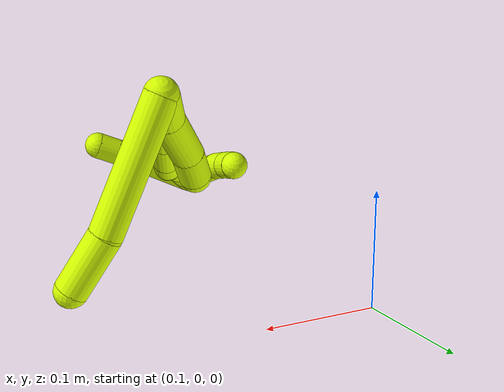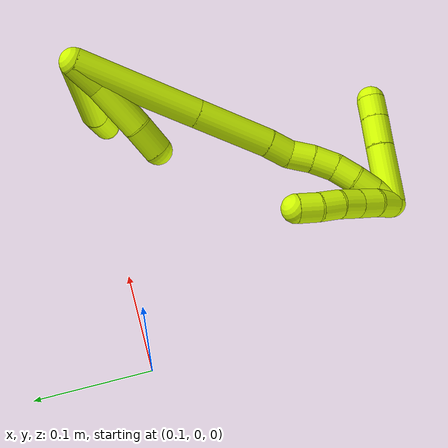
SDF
<sdf version="1.7">
 <world name="default">
  <model name="15">
   <static>0</static>
   <link name="15">
    <collision name="collision-cylinder-e_1_2_8">
     <pose>0.030953 -0.019974 -0.035981 2.63483 0.644871 1.82289</pose>
     <geometry><cylinder><radius>0.0125</radius><length>0.102989</length></cylinder></geometry>
     <surface>
      <friction><ode><mu>1.16</mu><mu2>1.16</mu2><slip1>0</slip1><slip2>0</slip2></ode></friction>
      <contact><ode><kp>1e+06</kp><kd>1</kd><max_vel>0</max_vel><min_depth>0.001</min_depth></ode></contact>
     </surface>
    </collision>
    <visual name="visual-cylinder-e_1_2_8">
     <pose>0.030953 -0.019974 -0.035981 2.63483 0.644871 1.82289</pose>
     <geometry><cylinder><radius>0.0125</radius><length>0.102989</length></cylinder></geometry>
     <material><ambient>0.835294 1 0 1</ambient></material>
    </visual>
    <collision name="collision-cylinder-e_2_8_6">
     <pose>0.073221 -0.052347 -0.088417 2.49582 0.502186 1.3081</pose>
     <geometry><cylinder><radius>0.0125</radius><length>0.047011</length></cylinder></geometry>
     <surface>
      <friction><ode><mu>1.16</mu><mu2>1.16</mu2><slip1>0</slip1><slip2>0</slip2></ode></friction>
      <contact><ode><kp>1e+06</kp><kd>1</kd><max_vel>0</max_vel><min_depth>0.001</min_depth></ode></contact>
     </surface>
    </collision>
    <visual name="visual-cylinder-e_2_8_6">
     <pose>0.073221 -0.052347 -0.088417 2.49582 0.502186 1.3081</pose>
     <geometry><cylinder><radius>0.0125</radius><length>0.047011</length></cylinder></geometry>
     <material><ambient>0.835294 1 0 1</ambient></material>
    </visual>
    <collision name="collision-cylinder-e_1_2_9">
     <pose>-0.000881 0.002787 -0.013478 -2.93768 -0.063955 0.606048</pose>
     <geometry><cylinder><radius>0.0125</radius><length>0.027583</length></cylinder></geometry>
     <surface>
      <friction><ode><mu>1.16</mu><mu2>1.16</mu2><slip1>0</slip1><slip2>0</slip2></ode></friction>
      <contact><ode><kp>1e+06</kp><kd>1</kd><max_vel>0</max_vel><min_depth>0.001</min_depth></ode></contact>
     </surface>
    </collision>
    <visual name="visual-cylinder-e_1_2_9">
     <pose>-0.000881 0.002787 -0.013478 -2.93768 -0.063955 0.606048</pose>
     <geometry><cylinder><radius>0.0125</radius><length>0.027583</length></cylinder></geometry>
     <material><ambient>0.835294 1 0 1</ambient></material>
    </visual>
    <collision name="collision-cylinder-e_2_9_10">
     <pose>-0.003172 0.014206 -0.048073 -2.75358 -0.0617 0.311584</pose>
     <geometry><cylinder><radius>0.0125</radius><length>0.045713</length></cylinder></geometry>
     <surface>
      <friction><ode><mu>1.16</mu><mu2>1.16</mu2><slip1>0</slip1><slip2>0</slip2></ode></friction>
      <contact><ode><kp>1e+06</kp><kd>1</kd><max_vel>0</max_vel><min_depth>0.001</min_depth></ode></contact>
     </surface>
    </collision>
    <visual name="visual-cylinder-e_2_9_10">
     <pose>-0.003172 0.014206 -0.048073 -2.75358 -0.0617 0.311584</pose>
     <geometry><cylinder><radius>0.0125</radius><length>0.045713</length></cylinder></geometry>
     <material><ambient>0.835294 1 0 1</ambient></material>
    </visual>
    <collision name="collision-cylinder-e_3_10_5">
     <pose>-0.00401 0.026569 -0.081998 -2.85804 0.042823 -0.297847</pose>
     <geometry><cylinder><radius>0.0125</radius><length>0.026704</length></cylinder></geometry>
     <surface>
      <friction><ode><mu>1.16</mu><mu2>1.16</mu2><slip1>0</slip1><slip2>0</slip2></ode></friction>
      <contact><ode><kp>1e+06</kp><kd>1</kd><max_vel>0</max_vel><min_depth>0.001</min_depth></ode></contact>
     </surface>
    </collision>
    <visual name="visual-cylinder-e_3_10_5">
     <pose>-0.00401 0.026569 -0.081998 -2.85804 0.042823 -0.297847</pose>
     <geometry><cylinder><radius>0.0125</radius><length>0.026704</length></cylinder></geometry>
     <material><ambient>0.835294 1 0 1</ambient></material>
    </visual>
    <collision name="collision-cylinder-e_1_2_11">
     <pose>-0.022058 0.00507 -0.04918 -3.03887 -0.419644 2.66786</pose>
     <geometry><cylinder><radius>0.0125</radius><length>0.108275</length></cylinder></geometry>
     <surface>
      <friction><ode><mu>1.16</mu><mu2>1.16</mu2><slip1>0</slip1><slip2>0</slip2></ode></friction>
      <contact><ode><kp>1e+06</kp><kd>1</kd><max_vel>0</max_vel><min_depth>0.001</min_depth></ode></contact>
     </surface>
    </collision>
    <visual name="visual-cylinder-e_1_2_11">
     <pose>-0.022058 0.00507 -0.04918 -3.03887 -0.419644 2.66786</pose>
     <geometry><cylinder><radius>0.0125</radius><length>0.108275</length></cylinder></geometry>
     <material><ambient>0.835294 1 0 1</ambient></material>
    </visual>
    <collision name="collision-cylinder-e_2_11_12">
     <pose>-0.058064 0.013567 -0.128877 -3.02974 -0.42637 2.63543</pose>
     <geometry><cylinder><radius>0.0125</radius><length>0.067458</length></cylinder></geometry>
     <surface>
      <friction><ode><mu>1.16</mu><mu2>1.16</mu2><slip1>0</slip1><slip2>0</slip2></ode></friction>
      <contact><ode><kp>1e+06</kp><kd>1</kd><max_vel>0</max_vel><min_depth>0.001</min_depth></ode></contact>
     </surface>
    </collision>
    <visual name="visual-cylinder-e_2_11_12">
     <pose>-0.058064 0.013567 -0.128877 -3.02974 -0.42637 2.63543</pose>
     <geometry><cylinder><radius>0.0125</radius><length>0.067458</length></cylinder></geometry>
     <material><ambient>0.835294 1 0 1</ambient></material>
    </visual>
    <collision name="collision-cylinder-e_3_12_13">
     <pose>-0.075866 0.018748 -0.169551 -2.97075 -0.357652 2.25676</pose>
     <geometry><cylinder><radius>0.0125</radius><length>0.022006</length></cylinder></geometry>
     <surface>
      <friction><ode><mu>1.16</mu><mu2>1.16</mu2><slip1>0</slip1><slip2>0</slip2></ode></friction>
      <contact><ode><kp>1e+06</kp><kd>1</kd><max_vel>0</max_vel><min_depth>0.001</min_depth></ode></contact>
     </surface>
    </collision>
    <visual name="visual-cylinder-e_3_12_13">
     <pose>-0.075866 0.018748 -0.169551 -2.97075 -0.357652 2.25676</pose>
     <geometry><cylinder><radius>0.0125</radius><length>0.022006</length></cylinder></geometry>
     <material><ambient>0.835294 1 0 1</ambient></material>
    </visual>
    <collision name="collision-cylinder-e_4_13_14">
     <pose>-0.086458 0.021841 -0.187655 -2.97442 -0.69653 2.688</pose>
     <geometry><cylinder><radius>0.0125</radius><length>0.021014</length></cylinder></geometry>
     <surface>
      <friction><ode><mu>1.16</mu><mu2>1.16</mu2><slip1>0</slip1><slip2>0</slip2></ode></friction>
      <contact><ode><kp>1e+06</kp><kd>1</kd><max_vel>0</max_vel><min_depth>0.001</min_depth></ode></contact>
     </surface>
    </collision>
    <visual name="visual-cylinder-e_4_13_14">
     <pose>-0.086458 0.021841 -0.187655 -2.97442 -0.69653 2.688</pose>
     <geometry><cylinder><radius>0.0125</radius><length>0.021014</length></cylinder></geometry>
     <material><ambient>0.835294 1 0 1</ambient></material>
    </visual>
    <collision name="collision-cylinder-e_5_14_15">
     <pose>-0.099091 0.025664 -0.203989 -2.85385 -0.592845 2.25577</pose>
     <geometry><cylinder><radius>0.0125</radius><length>0.021092</length></cylinder></geometry>
     <surface>
      <friction><ode><mu>1.16</mu><mu2>1.16</mu2><slip1>0</slip1><slip2>0</slip2></ode></friction>
      <contact><ode><kp>1e+06</kp><kd>1</kd><max_vel>0</max_vel><min_depth>0.001</min_depth></ode></contact>
     </surface>
    </collision>
    <visual name="visual-cylinder-e_5_14_15">
     <pose>-0.099091 0.025664 -0.203989 -2.85385 -0.592845 2.25577</pose>
     <geometry><cylinder><radius>0.0125</radius><length>0.021092</length></cylinder></geometry>
     <material><ambient>0.835294 1 0 1</ambient></material>
    </visual>
    <collision name="collision-cylinder-e_6_15_16">
     <pose>-0.109495 0.032232 -0.22034 -2.66761 -0.466818 1.55499</pose>
     <geometry><cylinder><radius>0.0125</radius><length>0.020047</length></cylinder></geometry>
     <surface>
      <friction><ode><mu>1.16</mu><mu2>1.16</mu2><slip1>0</slip1><slip2>0</slip2></ode></friction>
      <contact><ode><kp>1e+06</kp><kd>1</kd><max_vel>0</max_vel><min_depth>0.001</min_depth></ode></contact>
     </surface>
    </collision>
    <visual name="visual-cylinder-e_6_15_16">
     <pose>-0.109495 0.032232 -0.22034 -2.66761 -0.466818 1.55499</pose>
     <geometry><cylinder><radius>0.0125</radius><length>0.020047</length></cylinder></geometry>
     <material><ambient>0.835294 1 0 1</ambient></material>
    </visual>
    <collision name="collision-cylinder-e_7_16_17">
     <pose>-0.117496 0.039815 -0.237054 -2.76135 -0.354761 1.49991</pose>
     <geometry><cylinder><radius>0.0125</radius><length>0.020098</length></cylinder></geometry>
     <surface>
      <friction><ode><mu>1.16</mu><mu2>1.16</mu2><slip1>0</slip1><slip2>0</slip2></ode></friction>
      <contact><ode><kp>1e+06</kp><kd>1</kd><max_vel>0</max_vel><min_depth>0.001</min_depth></ode></contact>
     </surface>
    </collision>
    <visual name="visual-cylinder-e_7_16_17">
     <pose>-0.117496 0.039815 -0.237054 -2.76135 -0.354761 1.49991</pose>
     <geometry><cylinder><radius>0.0125</radius><length>0.020098</length></cylinder></geometry>
     <material><ambient>0.835294 1 0 1</ambient></material>
    </visual>
    <collision name="collision-cylinder-e_8_17_1">
     <pose>-0.124652 0.046775 -0.254446 -2.76048 -0.374994 1.55423</pose>
     <geometry><cylinder><radius>0.0125</radius><length>0.02001</length></cylinder></geometry>
     <surface>
      <friction><ode><mu>1.16</mu><mu2>1.16</mu2><slip1>0</slip1><slip2>0</slip2></ode></friction>
      <contact><ode><kp>1e+06</kp><kd>1</kd><max_vel>0</max_vel><min_depth>0.001</min_depth></ode></contact>
     </surface>
    </collision>
    <visual name="visual-cylinder-e_8_17_1">
     <pose>-0.124652 0.046775 -0.254446 -2.76048 -0.374994 1.55423</pose>
     <geometry><cylinder><radius>0.0125</radius><length>0.02001</length></cylinder></geometry>
     <material><ambient>0.835294 1 0 1</ambient></material>
    </visual>
    <collision name="collision-cylinder-e_1_1_18">
     <pose>-0.132841 0.026596 -0.252446 1.14783 -0.17279 -0.111872</pose>
     <geometry><cylinder><radius>0.0125</radius><length>0.052637</length></cylinder></geometry>
     <surface>
      <friction><ode><mu>1.16</mu><mu2>1.16</mu2><slip1>0</slip1><slip2>0</slip2></ode></friction>
      <contact><ode><kp>1e+06</kp><kd>1</kd><max_vel>0</max_vel><min_depth>0.001</min_depth></ode></contact>
     </surface>
    </collision>
    <visual name="visual-cylinder-e_1_1_18">
     <pose>-0.132841 0.026596 -0.252446 1.14783 -0.17279 -0.111872</pose>
     <geometry><cylinder><radius>0.0125</radius><length>0.052637</length></cylinder></geometry>
     <material><ambient>0.835294 1 0 1</ambient></material>
    </visual>
    <collision name="collision-cylinder-e_2_18_19">
     <pose>-0.139528 -0.009555 -0.236922 1.19867 -0.159619 -0.10917</pose>
     <geometry><cylinder><radius>0.0125</radius><length>0.027202</length></cylinder></geometry>
     <surface>
      <friction><ode><mu>1.16</mu><mu2>1.16</mu2><slip1>0</slip1><slip2>0</slip2></ode></friction>
      <contact><ode><kp>1e+06</kp><kd>1</kd><max_vel>0</max_vel><min_depth>0.001</min_depth></ode></contact>
     </surface>
    </collision>
    <visual name="visual-cylinder-e_2_18_19">
     <pose>-0.139528 -0.009555 -0.236922 1.19867 -0.159619 -0.10917</pose>
     <geometry><cylinder><radius>0.0125</radius><length>0.027202</length></cylinder></geometry>
     <material><ambient>0.835294 1 0 1</ambient></material>
    </visual>
    <collision name="collision-cylinder-e_3_19_4">
     <pose>-0.143153 -0.031369 -0.22845 1.20266 -0.145695 -0.100053</pose>
     <geometry><cylinder><radius>0.0125</radius><length>0.020162</length></cylinder></geometry>
     <surface>
      <friction><ode><mu>1.16</mu><mu2>1.16</mu2><slip1>0</slip1><slip2>0</slip2></ode></friction>
      <contact><ode><kp>1e+06</kp><kd>1</kd><max_vel>0</max_vel><min_depth>0.001</min_depth></ode></contact>
     </surface>
    </collision>
    <visual name="visual-cylinder-e_3_19_4">
     <pose>-0.143153 -0.031369 -0.22845 1.20266 -0.145695 -0.100053</pose>
     <geometry><cylinder><radius>0.0125</radius><length>0.020162</length></cylinder></geometry>
     <material><ambient>0.835294 1 0 1</ambient></material>
    </visual>
    <collision name="collision-cylinder-e_1_1_20">
     <pose>-0.125232 0.053733 -0.254241 -0.37629 0.313503 -0.060166</pose>
     <geometry><cylinder><radius>0.0125</radius><length>0.02</length></cylinder></geometry>
     <surface>
      <friction><ode><mu>1.16</mu><mu2>1.16</mu2><slip1>0</slip1><slip2>0</slip2></ode></friction>
      <contact><ode><kp>1e+06</kp><kd>1</kd><max_vel>0</max_vel><min_depth>0.001</min_depth></ode></contact>
     </surface>
    </collision>
    <visual name="visual-cylinder-e_1_1_20">
     <pose>-0.125232 0.053733 -0.254241 -0.37629 0.313503 -0.060166</pose>
     <geometry><cylinder><radius>0.0125</radius><length>0.02</length></cylinder></geometry>
     <material><ambient>0.835294 1 0 1</ambient></material>
    </visual>
    <collision name="collision-cylinder-e_2_20_21">
     <pose>-0.117346 0.060368 -0.237204 -0.366038 0.500907 -0.094631</pose>
     <geometry><cylinder><radius>0.0125</radius><length>0.02</length></cylinder></geometry>
     <surface>
      <friction><ode><mu>1.16</mu><mu2>1.16</mu2><slip1>0</slip1><slip2>0</slip2></ode></friction>
      <contact><ode><kp>1e+06</kp><kd>1</kd><max_vel>0</max_vel><min_depth>0.001</min_depth></ode></contact>
     </surface>
    </collision>
    <visual name="visual-cylinder-e_2_20_21">
     <pose>-0.117346 0.060368 -0.237204 -0.366038 0.500907 -0.094631</pose>
     <geometry><cylinder><radius>0.0125</radius><length>0.02</length></cylinder></geometry>
     <material><ambient>0.835294 1 0 1</ambient></material>
    </visual>
    <collision name="collision-cylinder-e_3_21_22">
     <pose>-0.108344 0.066898 -0.220595 -0.382843 0.4334 -0.085279</pose>
     <geometry><cylinder><radius>0.0125</radius><length>0.02</length></cylinder></geometry>
     <surface>
      <friction><ode><mu>1.16</mu><mu2>1.16</mu2><slip1>0</slip1><slip2>0</slip2></ode></friction>
      <contact><ode><kp>1e+06</kp><kd>1</kd><max_vel>0</max_vel><min_depth>0.001</min_depth></ode></contact>
     </surface>
    </collision>
    <visual name="visual-cylinder-e_3_21_22">
     <pose>-0.108344 0.066898 -0.220595 -0.382843 0.4334 -0.085279</pose>
     <geometry><cylinder><radius>0.0125</radius><length>0.02</length></cylinder></geometry>
     <material><ambient>0.835294 1 0 1</ambient></material>
    </visual>
    <collision name="collision-cylinder-e_4_22_23">
     <pose>-0.098633 0.073709 -0.204566 -0.422424 0.583757 -0.128665</pose>
     <geometry><cylinder><radius>0.0125</radius><length>0.02</length></cylinder></geometry>
     <surface>
      <friction><ode><mu>1.16</mu><mu2>1.16</mu2><slip1>0</slip1><slip2>0</slip2></ode></friction>
      <contact><ode><kp>1e+06</kp><kd>1</kd><max_vel>0</max_vel><min_depth>0.001</min_depth></ode></contact>
     </surface>
    </collision>
    <visual name="visual-cylinder-e_4_22_23">
     <pose>-0.098633 0.073709 -0.204566 -0.422424 0.583757 -0.128665</pose>
     <geometry><cylinder><radius>0.0125</radius><length>0.02</length></cylinder></geometry>
     <material><ambient>0.835294 1 0 1</ambient></material>
    </visual>
    <collision name="collision-cylinder-e_5_23_3">
     <pose>-0.086891 0.079265 -0.18943 -0.276508 0.672585 -0.097203</pose>
     <geometry><cylinder><radius>0.0125</radius><length>0.02</length></cylinder></geometry>
     <surface>
      <friction><ode><mu>1.16</mu><mu2>1.16</mu2><slip1>0</slip1><slip2>0</slip2></ode></friction>
      <contact><ode><kp>1e+06</kp><kd>1</kd><max_vel>0</max_vel><min_depth>0.001</min_depth></ode></contact>
     </surface>
    </collision>
    <visual name="visual-cylinder-e_5_23_3">
     <pose>-0.086891 0.079265 -0.18943 -0.276508 0.672585 -0.097203</pose>
     <geometry><cylinder><radius>0.0125</radius><length>0.02</length></cylinder></geometry>
     <material><ambient>0.835294 1 0 1</ambient></material>
    </visual>
    <collision name="collision-sphere-3">
     <pose>-0.080661 0.081401 -0.181905 0 -0 0</pose>
     <geometry><sphere><radius>0.0125</radius></sphere></geometry>
     <surface>
      <friction><ode><mu>1.16</mu><mu2>1.16</mu2><slip1>0</slip1><slip2>0</slip2></ode></friction>
      <contact><ode><kp>1e+06</kp><kd>1</kd><max_vel>0</max_vel><min_depth>0.001</min_depth></ode></contact>
     </surface>
    </collision>
    <visual name="visual-sphere-3">
     <pose>-0.080661 0.081401 -0.181905 0 -0 0</pose>
     <geometry><sphere><radius>0.0125</radius></sphere></geometry>
     <material><ambient>0.835294 1 0 1</ambient></material>
    </visual>
    <collision name="collision-sphere-23">
     <pose>-0.093121 0.07713 -0.196955 0 -0 0</pose>
     <geometry><sphere><radius>0.0125</radius></sphere></geometry>
     <surface>
      <friction><ode><mu>1.16</mu><mu2>1.16</mu2><slip1>0</slip1><slip2>0</slip2></ode></friction>
      <contact><ode><kp>1e+06</kp><kd>1</kd><max_vel>0</max_vel><min_depth>0.001</min_depth></ode></contact>
     </surface>
    </collision>
    <visual name="visual-sphere-23">
     <pose>-0.093121 0.07713 -0.196955 0 -0 0</pose>
     <geometry><sphere><radius>0.0125</radius></sphere></geometry>
     <material><ambient>0.835294 1 0 1</ambient></material>
    </visual>
    <collision name="collision-sphere-22">
     <pose>-0.104145 0.070288 -0.212176 0 -0 0</pose>
     <geometry><sphere><radius>0.0125</radius></sphere></geometry>
     <surface>
      <friction><ode><mu>1.16</mu><mu2>1.16</mu2><slip1>0</slip1><slip2>0</slip2></ode></friction>
      <contact><ode><kp>1e+06</kp><kd>1</kd><max_vel>0</max_vel><min_depth>0.001</min_depth></ode></contact>
     </surface>
    </collision>
    <visual name="visual-sphere-22">
     <pose>-0.104145 0.070288 -0.212176 0 -0 0</pose>
     <geometry><sphere><radius>0.0125</radius></sphere></geometry>
     <material><ambient>0.835294 1 0 1</ambient></material>
    </visual>
    <collision name="collision-sphere-21">
     <pose>-0.112544 0.063508 -0.229013 0 -0 0</pose>
     <geometry><sphere><radius>0.0125</radius></sphere></geometry>
     <surface>
      <friction><ode><mu>1.16</mu><mu2>1.16</mu2><slip1>0</slip1><slip2>0</slip2></ode></friction>
      <contact><ode><kp>1e+06</kp><kd>1</kd><max_vel>0</max_vel><min_depth>0.001</min_depth></ode></contact>
     </surface>
    </collision>
    <visual name="visual-sphere-21">
     <pose>-0.112544 0.063508 -0.229013 0 -0 0</pose>
     <geometry><sphere><radius>0.0125</radius></sphere></geometry>
     <material><ambient>0.835294 1 0 1</ambient></material>
    </visual>
    <collision name="collision-sphere-20">
     <pose>-0.122148 0.057229 -0.245394 0 -0 0</pose>
     <geometry><sphere><radius>0.0125</radius></sphere></geometry>
     <surface>
      <friction><ode><mu>1.16</mu><mu2>1.16</mu2><slip1>0</slip1><slip2>0</slip2></ode></friction>
      <contact><ode><kp>1e+06</kp><kd>1</kd><max_vel>0</max_vel><min_depth>0.001</min_depth></ode></contact>
     </surface>
    </collision>
    <visual name="visual-sphere-20">
     <pose>-0.122148 0.057229 -0.245394 0 -0 0</pose>
     <geometry><sphere><radius>0.0125</radius></sphere></geometry>
     <material><ambient>0.835294 1 0 1</ambient></material>
    </visual>
    <collision name="collision-sphere-4">
     <pose>-0.144616 -0.040675 -0.224861 0 -0 0</pose>
     <geometry><sphere><radius>0.0125</radius></sphere></geometry>
     <surface>
      <friction><ode><mu>1.16</mu><mu2>1.16</mu2><slip1>0</slip1><slip2>0</slip2></ode></friction>
      <contact><ode><kp>1e+06</kp><kd>1</kd><max_vel>0</max_vel><min_depth>0.001</min_depth></ode></contact>
     </surface>
    </collision>
    <visual name="visual-sphere-4">
     <pose>-0.144616 -0.040675 -0.224861 0 -0 0</pose>
     <geometry><sphere><radius>0.0125</radius></sphere></geometry>
     <material><ambient>0.835294 1 0 1</ambient></material>
    </visual>
    <collision name="collision-sphere-5">
     <pose>-0.003438 0.030301 -0.094805 0 -0 0</pose>
     <geometry><sphere><radius>0.0125</radius></sphere></geometry>
     <surface>
      <friction><ode><mu>1.16</mu><mu2>1.16</mu2><slip1>0</slip1><slip2>0</slip2></ode></friction>
      <contact><ode><kp>1e+06</kp><kd>1</kd><max_vel>0</max_vel><min_depth>0.001</min_depth></ode></contact>
     </surface>
    </collision>
    <visual name="visual-sphere-5">
     <pose>-0.003438 0.030301 -0.094805 0 -0 0</pose>
     <geometry><sphere><radius>0.0125</radius></sphere></geometry>
     <material><ambient>0.835294 1 0 1</ambient></material>
    </visual>
    <collision name="collision-sphere-10">
     <pose>-0.004582 0.022837 -0.069191 0 -0 0</pose>
     <geometry><sphere><radius>0.0125</radius></sphere></geometry>
     <surface>
      <friction><ode><mu>1.16</mu><mu2>1.16</mu2><slip1>0</slip1><slip2>0</slip2></ode></friction>
      <contact><ode><kp>1e+06</kp><kd>1</kd><max_vel>0</max_vel><min_depth>0.001</min_depth></ode></contact>
     </surface>
    </collision>
    <visual name="visual-sphere-10">
     <pose>-0.004582 0.022837 -0.069191 0 -0 0</pose>
     <geometry><sphere><radius>0.0125</radius></sphere></geometry>
     <material><ambient>0.835294 1 0 1</ambient></material>
    </visual>
    <collision name="collision-sphere-6">
     <pose>0.084535 -0.064746 -0.104871 0 -0 0</pose>
     <geometry><sphere><radius>0.0125</radius></sphere></geometry>
     <surface>
      <friction><ode><mu>1.16</mu><mu2>1.16</mu2><slip1>0</slip1><slip2>0</slip2></ode></friction>
      <contact><ode><kp>1e+06</kp><kd>1</kd><max_vel>0</max_vel><min_depth>0.001</min_depth></ode></contact>
     </surface>
    </collision>
    <visual name="visual-sphere-6">
     <pose>0.084535 -0.064746 -0.104871 0 -0 0</pose>
     <geometry><sphere><radius>0.0125</radius></sphere></geometry>
     <material><ambient>0.835294 1 0 1</ambient></material>
    </visual>
    <collision name="collision-sphere-9">
     <pose>-0.001763 0.005574 -0.026956 0 -0 0</pose>
     <geometry><sphere><radius>0.0125</radius></sphere></geometry>
     <surface>
      <friction><ode><mu>1.16</mu><mu2>1.16</mu2><slip1>0</slip1><slip2>0</slip2></ode></friction>
      <contact><ode><kp>1e+06</kp><kd>1</kd><max_vel>0</max_vel><min_depth>0.001</min_depth></ode></contact>
     </surface>
    </collision>
    <visual name="visual-sphere-9">
     <pose>-0.001763 0.005574 -0.026956 0 -0 0</pose>
     <geometry><sphere><radius>0.0125</radius></sphere></geometry>
     <material><ambient>0.835294 1 0 1</ambient></material>
    </visual>
    <collision name="collision-sphere-2">
     <geometry><sphere><radius>0.0125</radius></sphere></geometry>
     <surface>
      <friction><ode><mu>1.16</mu><mu2>1.16</mu2><slip1>0</slip1><slip2>0</slip2></ode></friction>
      <contact><ode><kp>1e+06</kp><kd>1</kd><max_vel>0</max_vel><min_depth>0.001</min_depth></ode></contact>
     </surface>
    </collision>
    <visual name="visual-sphere-2">
     <geometry><sphere><radius>0.0125</radius></sphere></geometry>
     <material><ambient>0.835294 1 0 1</ambient></material>
    </visual>
    <collision name="collision-sphere-19">
     <pose>-0.141689 -0.022063 -0.23204 0 -0 0</pose>
     <geometry><sphere><radius>0.0125</radius></sphere></geometry>
     <surface>
      <friction><ode><mu>1.16</mu><mu2>1.16</mu2><slip1>0</slip1><slip2>0</slip2></ode></friction>
      <contact><ode><kp>1e+06</kp><kd>1</kd><max_vel>0</max_vel><min_depth>0.001</min_depth></ode></contact>
     </surface>
    </collision>
    <visual name="visual-sphere-19">
     <pose>-0.141689 -0.022063 -0.23204 0 -0 0</pose>
     <geometry><sphere><radius>0.0125</radius></sphere></geometry>
     <material><ambient>0.835294 1 0 1</ambient></material>
    </visual>
    <collision name="collision-sphere-8">
     <pose>0.061906 -0.039947 -0.071963 0 -0 0</pose>
     <geometry><sphere><radius>0.0125</radius></sphere></geometry>
     <surface>
      <friction><ode><mu>1.16</mu><mu2>1.16</mu2><slip1>0</slip1><slip2>0</slip2></ode></friction>
      <contact><ode><kp>1e+06</kp><kd>1</kd><max_vel>0</max_vel><min_depth>0.001</min_depth></ode></contact>
     </surface>
    </collision>
    <visual name="visual-sphere-8">
     <pose>0.061906 -0.039947 -0.071963 0 -0 0</pose>
     <geometry><sphere><radius>0.0125</radius></sphere></geometry>
     <material><ambient>0.835294 1 0 1</ambient></material>
    </visual>
    <collision name="collision-sphere-11">
     <pose>-0.044115 0.01014 -0.098359 0 -0 0</pose>
     <geometry><sphere><radius>0.0125</radius></sphere></geometry>
     <surface>
      <friction><ode><mu>1.16</mu><mu2>1.16</mu2><slip1>0</slip1><slip2>0</slip2></ode></friction>
      <contact><ode><kp>1e+06</kp><kd>1</kd><max_vel>0</max_vel><min_depth>0.001</min_depth></ode></contact>
     </surface>
    </collision>
    <visual name="visual-sphere-11">
     <pose>-0.044115 0.01014 -0.098359 0 -0 0</pose>
     <geometry><sphere><radius>0.0125</radius></sphere></geometry>
     <material><ambient>0.835294 1 0 1</ambient></material>
    </visual>
    <collision name="collision-sphere-12">
     <pose>-0.072014 0.016995 -0.159395 0 -0 0</pose>
     <geometry><sphere><radius>0.0125</radius></sphere></geometry>
     <surface>
      <friction><ode><mu>1.16</mu><mu2>1.16</mu2><slip1>0</slip1><slip2>0</slip2></ode></friction>
      <contact><ode><kp>1e+06</kp><kd>1</kd><max_vel>0</max_vel><min_depth>0.001</min_depth></ode></contact>
     </surface>
    </collision>
    <visual name="visual-sphere-12">
     <pose>-0.072014 0.016995 -0.159395 0 -0 0</pose>
     <geometry><sphere><radius>0.0125</radius></sphere></geometry>
     <material><ambient>0.835294 1 0 1</ambient></material>
    </visual>
    <collision name="collision-sphere-13">
     <pose>-0.079717 0.0205 -0.179708 0 -0 0</pose>
     <geometry><sphere><radius>0.0125</radius></sphere></geometry>
     <surface>
      <friction><ode><mu>1.16</mu><mu2>1.16</mu2><slip1>0</slip1><slip2>0</slip2></ode></friction>
      <contact><ode><kp>1e+06</kp><kd>1</kd><max_vel>0</max_vel><min_depth>0.001</min_depth></ode></contact>
     </surface>
    </collision>
    <visual name="visual-sphere-13">
     <pose>-0.079717 0.0205 -0.179708 0 -0 0</pose>
     <geometry><sphere><radius>0.0125</radius></sphere></geometry>
     <material><ambient>0.835294 1 0 1</ambient></material>
    </visual>
    <collision name="collision-sphere-14">
     <pose>-0.093199 0.023182 -0.195602 0 -0 0</pose>
     <geometry><sphere><radius>0.0125</radius></sphere></geometry>
     <surface>
      <friction><ode><mu>1.16</mu><mu2>1.16</mu2><slip1>0</slip1><slip2>0</slip2></ode></friction>
      <contact><ode><kp>1e+06</kp><kd>1</kd><max_vel>0</max_vel><min_depth>0.001</min_depth></ode></contact>
     </surface>
    </collision>
    <visual name="visual-sphere-14">
     <pose>-0.093199 0.023182 -0.195602 0 -0 0</pose>
     <geometry><sphere><radius>0.0125</radius></sphere></geometry>
     <material><ambient>0.835294 1 0 1</ambient></material>
    </visual>
    <collision name="collision-sphere-15">
     <pose>-0.104984 0.028146 -0.212376 0 -0 0</pose>
     <geometry><sphere><radius>0.0125</radius></sphere></geometry>
     <surface>
      <friction><ode><mu>1.16</mu><mu2>1.16</mu2><slip1>0</slip1><slip2>0</slip2></ode></friction>
      <contact><ode><kp>1e+06</kp><kd>1</kd><max_vel>0</max_vel><min_depth>0.001</min_depth></ode></contact>
     </surface>
    </collision>
    <visual name="visual-sphere-15">
     <pose>-0.104984 0.028146 -0.212376 0 -0 0</pose>
     <geometry><sphere><radius>0.0125</radius></sphere></geometry>
     <material><ambient>0.835294 1 0 1</ambient></material>
    </visual>
    <collision name="collision-sphere-16">
     <pose>-0.114006 0.036318 -0.228304 0 -0 0</pose>
     <geometry><sphere><radius>0.0125</radius></sphere></geometry>
     <surface>
      <friction><ode><mu>1.16</mu><mu2>1.16</mu2><slip1>0</slip1><slip2>0</slip2></ode></friction>
      <contact><ode><kp>1e+06</kp><kd>1</kd><max_vel>0</max_vel><min_depth>0.001</min_depth></ode></contact>
     </surface>
    </collision>
    <visual name="visual-sphere-16">
     <pose>-0.114006 0.036318 -0.228304 0 -0 0</pose>
     <geometry><sphere><radius>0.0125</radius></sphere></geometry>
     <material><ambient>0.835294 1 0 1</ambient></material>
    </visual>
    <collision name="collision-sphere-17">
     <pose>-0.120987 0.043312 -0.245804 0 -0 0</pose>
     <geometry><sphere><radius>0.0125</radius></sphere></geometry>
     <surface>
      <friction><ode><mu>1.16</mu><mu2>1.16</mu2><slip1>0</slip1><slip2>0</slip2></ode></friction>
      <contact><ode><kp>1e+06</kp><kd>1</kd><max_vel>0</max_vel><min_depth>0.001</min_depth></ode></contact>
     </surface>
    </collision>
    <visual name="visual-sphere-17">
     <pose>-0.120987 0.043312 -0.245804 0 -0 0</pose>
     <geometry><sphere><radius>0.0125</radius></sphere></geometry>
     <material><ambient>0.835294 1 0 1</ambient></material>
    </visual>
    <collision name="collision-sphere-1">
     <pose>-0.128316 0.050238 -0.263088 0 -0 0</pose>
     <geometry><sphere><radius>0.0125</radius></sphere></geometry>
     <surface>
      <friction><ode><mu>1.16</mu><mu2>1.16</mu2><slip1>0</slip1><slip2>0</slip2></ode></friction>
      <contact><ode><kp>1e+06</kp><kd>1</kd><max_vel>0</max_vel><min_depth>0.001</min_depth></ode></contact>
     </surface>
    </collision>
    <visual name="visual-sphere-1">
     <pose>-0.128316 0.050238 -0.263088 0 -0 0</pose>
     <geometry><sphere><radius>0.0125</radius></sphere></geometry>
     <material><ambient>0.835294 1 0 1</ambient></material>
    </visual>
    <collision name="collision-sphere-18">
     <pose>-0.137366 0.002954 -0.241804 0 -0 0</pose>
     <geometry><sphere><radius>0.0125</radius></sphere></geometry>
     <surface>
      <friction><ode><mu>1.16</mu><mu2>1.16</mu2><slip1>0</slip1><slip2>0</slip2></ode></friction>
      <contact><ode><kp>1e+06</kp><kd>1</kd><max_vel>0</max_vel><min_depth>0.001</min_depth></ode></contact>
     </surface>
    </collision>
    <visual name="visual-sphere-18">
     <pose>-0.137366 0.002954 -0.241804 0 -0 0</pose>
     <geometry><sphere><radius>0.0125</radius></sphere></geometry>
     <material><ambient>0.835294 1 0 1</ambient></material>
    </visual>
    <inertial>
     <pose>-0.049309 0.012486 -0.132466 0 -0 0</pose>
     <mass>0.75</mass>
     <inertia><ixx>5.5e-05</ixx><ixy>0</ixy><ixz>0</ixz><iyy>0.000324</iyy><iyz>0</iyz><izz>8e-06</izz></inertia>
    </inertial>
   </link>
   <pose>0.285103 0.008863 0.187404 -0.007729 0.706013 1.28678</pose>
  </model>
 </world>
</sdf>
